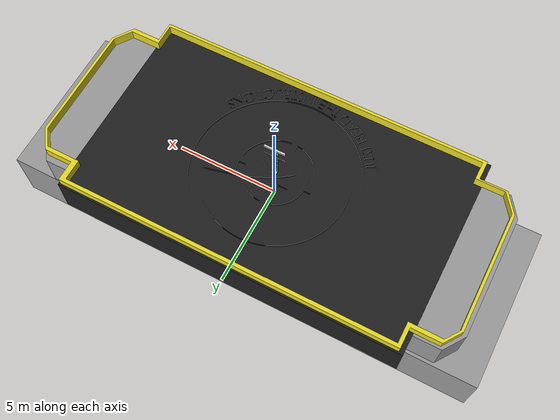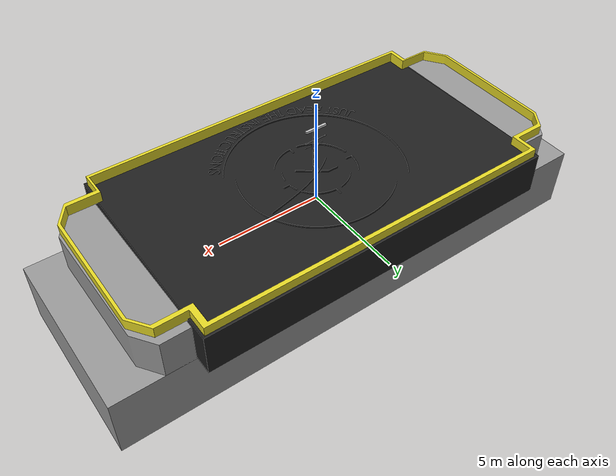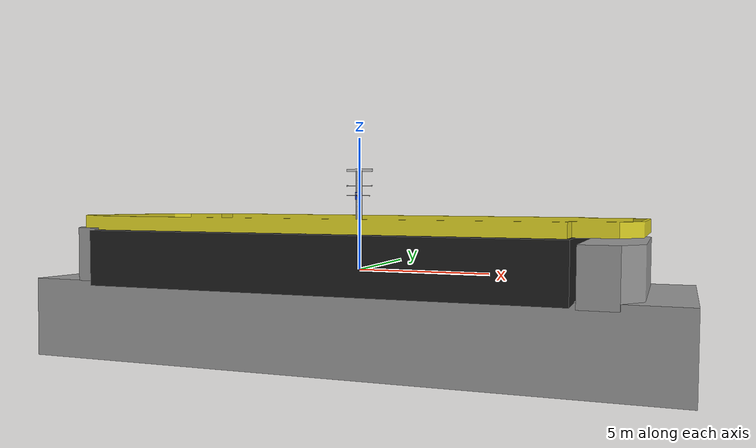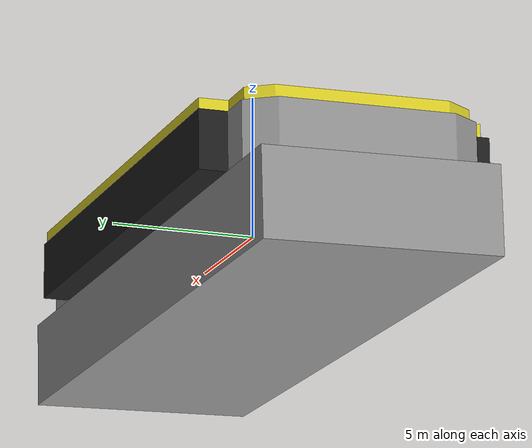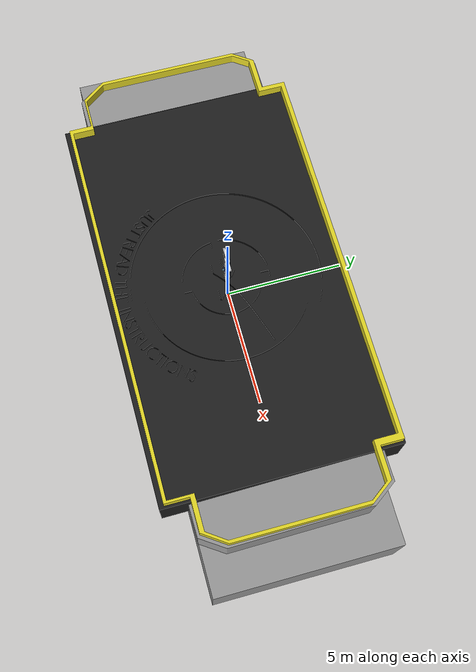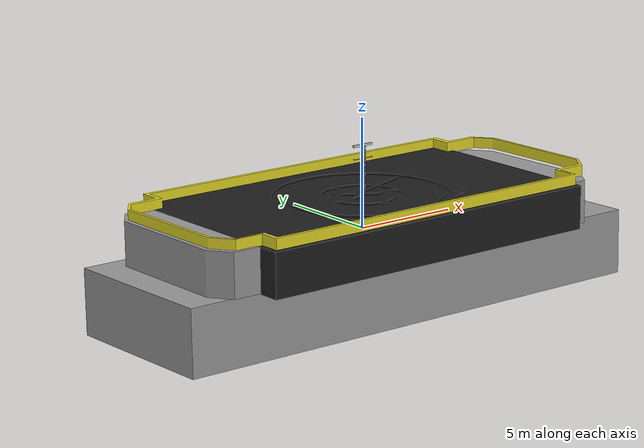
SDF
<?xml version='1.0'?>
<sdf version='1.6'>
  <model name='droneship2'>
    <link name='link_0'>
      <inertial>
        <mass>10000</mass>
        <inertia>
          <ixx>10000</ixx>
          <ixy>0</ixy>
          <ixz>0</ixz>
          <iyy>10000</iyy>
          <iyz>0</iyz>
          <izz>10000</izz>
        </inertia>
      </inertial>
      <pose frame=''>0.055548 0.074743 -0.469586 -1.59323 0 0</pose>
      <self_collide>0</self_collide>
      <enable_wind>0</enable_wind>
      <kinematic>0</kinematic>
      <visual name='visual'>
        <pose frame=''>0 0 0 0 -0 0</pose>
        <geometry>
          <mesh>
            <uri>/home/amit/catkin_ws/src/hunter_killer_mast/meshes/droneship/Drone Ship Base.stl</uri>
            <scale>1 1 1</scale>
          </mesh>
        </geometry>
        <material>
          <lighting>1</lighting>
          <script>
            <uri>file://media/materials/scripts/gazebo.material</uri>
            <name>Gazebo/Grey</name>
          </script>
        </material>
        <transparency>0</transparency>
        <cast_shadows>0</cast_shadows>
      </visual>
      <collision name='collision'>
        <laser_retro>0</laser_retro>
        <max_contacts>10</max_contacts>
        <pose frame=''>0 0 0 0 -0 0</pose>
        <geometry>
          <mesh>
            <uri>/home/amit/catkin_ws/src/hunter_killer_mast/meshes/droneship/Drone Ship Base.stl</uri>
            <scale>1 1 1</scale>
          </mesh>
        </geometry>
        <surface>
          <friction>
            <ode>
              <mu>1</mu>
              <mu2>1</mu2>
              <fdir1>0 0 0</fdir1>
              <slip1>0</slip1>
              <slip2>0</slip2>
            </ode>
            <torsional>
              <coefficient>1</coefficient>
              <patch_radius>0</patch_radius>
              <surface_radius>0</surface_radius>
              <use_patch_radius>1</use_patch_radius>
              <ode>
                <slip>0</slip>
              </ode>
            </torsional>
          </friction>
          <bounce>
            <restitution_coefficient>0</restitution_coefficient>
            <threshold>1e+06</threshold>
          </bounce>
          <contact>
            <collide_without_contact>0</collide_without_contact>
            <collide_without_contact_bitmask>1</collide_without_contact_bitmask>
            <collide_bitmask>1</collide_bitmask>
            <ode>
              <soft_cfm>0</soft_cfm>
              <soft_erp>0.2</soft_erp>
              <kp>1e+13</kp>
              <kd>1</kd>
              <max_vel>0.01</max_vel>
              <min_depth>0</min_depth>
            </ode>
            <bullet>
              <split_impulse>1</split_impulse>
              <split_impulse_penetration_threshold>-0.01</split_impulse_penetration_threshold>
              <soft_cfm>0</soft_cfm>
              <soft_erp>0.2</soft_erp>
              <kp>1e+13</kp>
              <kd>1</kd>
            </bullet>
          </contact>
        </surface>
      </collision>
    </link>
    <link name='base'>
      <pose frame=''>0 0 1.55445 0 -0 0</pose>
      <inertial>
        <pose frame=''>-0.021807 0.298116 0.306153 0 -0 0</pose>
        <mass>26.6735</mass>
        <inertia>
          <ixx>2.29538</ixx>
          <ixy>-9.71572e-19</ixy>
          <ixz>-2.66211e-17</ixz>
          <iyy>4.58898</iyy>
          <iyz>0</iyz>
          <izz>2.29538</izz>
        </inertia>
      </inertial>
      <self_collide>0</self_collide>
      <enable_wind>0</enable_wind>
      <kinematic>0</kinematic>
      <collision name='base_collision'>
        <laser_retro>0</laser_retro>
        <max_contacts>10</max_contacts>
        <pose frame=''>-0.25 0.3 0 0 -0 0</pose>
        <geometry>
          <mesh>
            <uri>/home/amit/catkin_ws/src/hunter_killer_mast/meshes/base.STL</uri>
            <scale>1 1 1</scale>
          </mesh>
        </geometry>
        <surface>
          <friction>
            <ode>
              <mu>1</mu>
              <mu2>1</mu2>
              <fdir1>0 0 0</fdir1>
              <slip1>0</slip1>
              <slip2>0</slip2>
            </ode>
            <torsional>
              <coefficient>1</coefficient>
              <patch_radius>0</patch_radius>
              <surface_radius>0</surface_radius>
              <use_patch_radius>1</use_patch_radius>
              <ode>
                <slip>0</slip>
              </ode>
            </torsional>
          </friction>
          <bounce>
            <restitution_coefficient>0</restitution_coefficient>
            <threshold>1e+06</threshold>
          </bounce>
          <contact>
            <collide_without_contact>0</collide_without_contact>
            <collide_without_contact_bitmask>1</collide_without_contact_bitmask>
            <collide_bitmask>1</collide_bitmask>
            <ode>
              <soft_cfm>0</soft_cfm>
              <soft_erp>0.2</soft_erp>
              <kp>1e+13</kp>
              <kd>1</kd>
              <max_vel>0.01</max_vel>
              <min_depth>0</min_depth>
            </ode>
            <bullet>
              <split_impulse>1</split_impulse>
              <split_impulse_penetration_threshold>-0.01</split_impulse_penetration_threshold>
              <soft_cfm>0</soft_cfm>
              <soft_erp>0.2</soft_erp>
              <kp>1e+13</kp>
              <kd>1</kd>
            </bullet>
          </contact>
        </surface>
      </collision>
    </link>
    <link name='link_1'>
      <inertial>
        <mass>10000</mass>
        <inertia>
          <ixx>10000</ixx>
          <ixy>0</ixy>
          <ixz>0</ixz>
          <iyy>10000</iyy>
          <iyz>0</iyz>
          <izz>10000</izz>
        </inertia>
      </inertial>
      <pose frame=''>-0.038817 -0.079302 -0.447148 1.56287 -0 0</pose>
      <self_collide>0</self_collide>
      <enable_wind>0</enable_wind>
      <kinematic>0</kinematic>
      <visual name='visual'>
        <pose frame=''>0 0 0 0 -0 0</pose>
        <geometry>
          <mesh>
            <uri>/home/amit/catkin_ws/src/hunter_killer_mast/meshes/droneship/Drone Ship part 2.stl</uri>
            <scale>1 1 1</scale>
          </mesh>
        </geometry>
        <material>
          <lighting>1</lighting>
          <script>
            <uri>file://media/materials/scripts/gazebo.material</uri>
            <name>Gazebo/Black</name>
          </script>
        </material>
        <transparency>0</transparency>
        <cast_shadows>0</cast_shadows>
      </visual>
      <collision name='collision'>
        <laser_retro>0</laser_retro>
        <max_contacts>10</max_contacts>
        <pose frame=''>0 0 0 0 -0 0</pose>
        <geometry>
          <mesh>
            <uri>/home/amit/catkin_ws/src/hunter_killer_mast/meshes/droneship/Drone Ship part 2.stl</uri>
            <scale>0.75 0.75 0.75</scale>
          </mesh>
        </geometry>
        <surface>
          <friction>
            <ode>
              <mu>1</mu>
              <mu2>1</mu2>
              <fdir1>0 0 0</fdir1>
              <slip1>0</slip1>
              <slip2>0</slip2>
            </ode>
            <torsional>
              <coefficient>1</coefficient>
              <patch_radius>0</patch_radius>
              <surface_radius>0</surface_radius>
              <use_patch_radius>1</use_patch_radius>
              <ode>
                <slip>0</slip>
              </ode>
            </torsional>
          </friction>
          <bounce>
            <restitution_coefficient>0</restitution_coefficient>
            <threshold>1e+06</threshold>
          </bounce>
          <contact>
            <collide_without_contact>0</collide_without_contact>
            <collide_without_contact_bitmask>1</collide_without_contact_bitmask>
            <collide_bitmask>1</collide_bitmask>
            <ode>
              <soft_cfm>0</soft_cfm>
              <soft_erp>0.2</soft_erp>
              <kp>1e+13</kp>
              <kd>1</kd>
              <max_vel>0.01</max_vel>
              <min_depth>0</min_depth>
            </ode>
            <bullet>
              <split_impulse>1</split_impulse>
              <split_impulse_penetration_threshold>-0.01</split_impulse_penetration_threshold>
              <soft_cfm>0</soft_cfm>
              <soft_erp>0.2</soft_erp>
              <kp>1e+13</kp>
              <kd>1</kd>
            </bullet>
          </contact>
        </surface>
      </collision>
    </link>
    <link name='link_2'>
      <inertial>
        <mass>10000</mass>
        <inertia>
          <ixx>10000</ixx>
          <ixy>0</ixy>
          <ixz>0</ixz>
          <iyy>10000</iyy>
          <iyz>0</iyz>
          <izz>10000</izz>
        </inertia>
      </inertial>
      <pose frame=''>-9.5532 -0.057565 -0.438942 1.55624 -0 0</pose>
      <self_collide>0</self_collide>
      <enable_wind>0</enable_wind>
      <kinematic>0</kinematic>
      <visual name='visual'>
        <pose frame=''>0 0 0 0 -0 0</pose>
        <geometry>
          <mesh>
            <uri>/home/amit/catkin_ws/src/hunter_killer_mast/meshes/droneship/Just Read The Instructions Part 1.stl</uri>
            <scale>1 1 1</scale>
          </mesh>
        </geometry>
        <material>
          <lighting>1</lighting>
          <script>
            <uri>file://media/materials/scripts/gazebo.material</uri>
            <name>Gazebo/Grey</name>
          </script>
        </material>
        <transparency>0</transparency>
        <cast_shadows>0</cast_shadows>
      </visual>
      <collision name='collision'>
        <laser_retro>0</laser_retro>
        <max_contacts>10</max_contacts>
        <pose frame=''>0 0 0 0 -0 0</pose>
        <geometry>
          <mesh>
            <uri>/home/amit/catkin_ws/src/hunter_killer_mast/meshes/droneship/Just Read The Instructions Part 1.stl</uri>
            <scale>1 1 1</scale>
          </mesh>
        </geometry>
        <surface>
          <friction>
            <ode>
              <mu>1</mu>
              <mu2>1</mu2>
              <fdir1>0 0 0</fdir1>
              <slip1>0</slip1>
              <slip2>0</slip2>
            </ode>
            <torsional>
              <coefficient>1</coefficient>
              <patch_radius>0</patch_radius>
              <surface_radius>0</surface_radius>
              <use_patch_radius>1</use_patch_radius>
              <ode>
                <slip>0</slip>
              </ode>
            </torsional>
          </friction>
          <bounce>
            <restitution_coefficient>0</restitution_coefficient>
            <threshold>1e+06</threshold>
          </bounce>
          <contact>
            <collide_without_contact>0</collide_without_contact>
            <collide_without_contact_bitmask>1</collide_without_contact_bitmask>
            <collide_bitmask>1</collide_bitmask>
            <ode>
              <soft_cfm>0</soft_cfm>
              <soft_erp>0.2</soft_erp>
              <kp>1e+13</kp>
              <kd>1</kd>
              <max_vel>0.01</max_vel>
              <min_depth>0</min_depth>
            </ode>
            <bullet>
              <split_impulse>1</split_impulse>
              <split_impulse_penetration_threshold>-0.01</split_impulse_penetration_threshold>
              <soft_cfm>0</soft_cfm>
              <soft_erp>0.2</soft_erp>
              <kp>1e+13</kp>
              <kd>1</kd>
            </bullet>
          </contact>
        </surface>
      </collision>
    </link>
    <link name='link_3'>
      <inertial>
        <mass>10000</mass>
        <inertia>
          <ixx>10000</ixx>
          <ixy>0</ixy>
          <ixz>0</ixz>
          <iyy>10000</iyy>
          <iyz>0</iyz>
          <izz>10000</izz>
        </inertia>
      </inertial>
      <pose frame=''>0.051094 0.007434 2.02223 -1.5872 0 0</pose>
      <self_collide>0</self_collide>
      <enable_wind>0</enable_wind>
      <kinematic>0</kinematic>
      <visual name='visual'>
        <pose frame=''>0 0 0 0 -0 0</pose>
        <geometry>
          <mesh>
            <uri>/home/amit/catkin_ws/src/hunter_killer_mast/meshes/droneship/Railing.stl</uri>
            <scale>1 1 1</scale>
          </mesh>
        </geometry>
        <material>
          <lighting>1</lighting>
          <script>
            <uri>file://media/materials/scripts/gazebo.material</uri>
            <name>Gazebo/Yellow</name>
          </script>
        </material>
        <transparency>0</transparency>
        <cast_shadows>0</cast_shadows>
      </visual>
      <collision name='collision'>
        <laser_retro>0</laser_retro>
        <max_contacts>10</max_contacts>
        <pose frame=''>0 0 0 0 -0 0</pose>
        <geometry>
          <mesh>
            <uri>/home/amit/catkin_ws/src/hunter_killer_mast/meshes/droneship/Railing.stl</uri>
            <scale>1 1 1</scale>
          </mesh>
        </geometry>
        <surface>
          <friction>
            <ode>
              <mu>1</mu>
              <mu2>1</mu2>
              <fdir1>0 0 0</fdir1>
              <slip1>0</slip1>
              <slip2>0</slip2>
            </ode>
            <torsional>
              <coefficient>1</coefficient>
              <patch_radius>0</patch_radius>
              <surface_radius>0</surface_radius>
              <use_patch_radius>1</use_patch_radius>
              <ode>
                <slip>0</slip>
              </ode>
            </torsional>
          </friction>
          <bounce>
            <restitution_coefficient>0</restitution_coefficient>
            <threshold>1e+06</threshold>
          </bounce>
          <contact>
            <collide_without_contact>0</collide_without_contact>
            <collide_without_contact_bitmask>1</collide_without_contact_bitmask>
            <collide_bitmask>1</collide_bitmask>
            <ode>
              <soft_cfm>0</soft_cfm>
              <soft_erp>0.2</soft_erp>
              <kp>1e+13</kp>
              <kd>1</kd>
              <max_vel>0.01</max_vel>
              <min_depth>0</min_depth>
            </ode>
            <bullet>
              <split_impulse>1</split_impulse>
              <split_impulse_penetration_threshold>-0.01</split_impulse_penetration_threshold>
              <soft_cfm>0</soft_cfm>
              <soft_erp>0.2</soft_erp>
              <kp>1e+13</kp>
              <kd>1</kd>
            </bullet>
          </contact>
        </surface>
      </collision>
    </link>
    <link name='link_4'>
      <inertial>
        <mass>10000</mass>
        <inertia>
          <ixx>10000</ixx>
          <ixy>0</ixy>
          <ixz>0</ixz>
          <iyy>10000</iyy>
          <iyz>0</iyz>
          <izz>10000</izz>
        </inertia>
      </inertial>
      <pose frame=''>9.48535 0.054699 -0.666566 1.58388 0.000281 -3.1322</pose>
      <self_collide>0</self_collide>
      <enable_wind>0</enable_wind>
      <kinematic>0</kinematic>
      <visual name='visual'>
        <pose frame=''>0 0 0 0 -0 0</pose>
        <geometry>
          <mesh>
            <uri>/home/amit/catkin_ws/src/hunter_killer_mast/meshes/droneship/Just Read The Instructions Part 1.stl</uri>
            <scale>1 1 1</scale>
          </mesh>
        </geometry>
        <material>
          <lighting>1</lighting>
          <script>
            <uri>file://media/materials/scripts/gazebo.material</uri>
            <name>Gazebo/Grey</name>
          </script>
        </material>
        <transparency>0</transparency>
        <cast_shadows>0</cast_shadows>
      </visual>
      <collision name='collision'>
        <laser_retro>0</laser_retro>
        <max_contacts>10</max_contacts>
        <pose frame=''>0 0 0 0 -0 0</pose>
        <geometry>
          <mesh>
            <uri>/home/amit/catkin_ws/src/hunter_killer_mast/meshes/droneship/Just Read The Instructions Part 1.stl</uri>
            <scale>1 1 1</scale>
          </mesh>
        </geometry>
        <surface>
          <friction>
            <ode>
              <mu>1</mu>
              <mu2>1</mu2>
              <fdir1>0 0 0</fdir1>
              <slip1>0</slip1>
              <slip2>0</slip2>
            </ode>
            <torsional>
              <coefficient>1</coefficient>
              <patch_radius>0</patch_radius>
              <surface_radius>0</surface_radius>
              <use_patch_radius>1</use_patch_radius>
              <ode>
                <slip>0</slip>
              </ode>
            </torsional>
          </friction>
          <bounce>
            <restitution_coefficient>0</restitution_coefficient>
            <threshold>1e+06</threshold>
          </bounce>
          <contact>
            <collide_without_contact>0</collide_without_contact>
            <collide_without_contact_bitmask>1</collide_without_contact_bitmask>
            <collide_bitmask>1</collide_bitmask>
            <ode>
              <soft_cfm>0</soft_cfm>
              <soft_erp>0.2</soft_erp>
              <kp>1e+13</kp>
              <kd>1</kd>
              <max_vel>0.01</max_vel>
              <min_depth>0</min_depth>
            </ode>
            <bullet>
              <split_impulse>1</split_impulse>
              <split_impulse_penetration_threshold>-0.01</split_impulse_penetration_threshold>
              <soft_cfm>0</soft_cfm>
              <soft_erp>0.2</soft_erp>
              <kp>1e+13</kp>
              <kd>1</kd>
            </bullet>
          </contact>
        </surface>
      </collision>
    </link>
    <link name='mast'>
      <pose frame=''>0 0 1.76468 0 -0 0</pose>
      <inertial>
        <pose frame=''>-0.001482 -0.028214 0.755526 -3.14159 -1.0464 -1.0472</pose>
        <mass>4.50868</mass>
        <inertia>
          <ixx>0.278217</ixx>
          <ixy>-0.0121037</ixy>
          <ixz>0.369556</ixz>
          <iyy>0.959113</iyy>
          <iyz>0.0251943</iyz>
          <izz>0.786576</izz>
        </inertia>
      </inertial>
      <self_collide>0</self_collide>
      <enable_wind>0</enable_wind>
      <kinematic>0</kinematic>
      <visual name='mast_fixed_joint_lump__ledport_visual_9'>
        <pose frame=''>0.48 -0.046 1.48 0 -0 0</pose>
        <geometry>
          <mesh>
            <scale>1 1 1</scale>
            <uri>/home/amit/catkin_ws/src/hunter_killer_mast/meshes/base_led.STL</uri>
          </mesh>
        </geometry>
        <material>
          <shader type='vertex'>
            <normal_map>__default__</normal_map>
          </shader>
          <script>
            <name>ModelPreview_1::base::base_fixed_joint_lump__navigation_pole_visual_9_MATERIAL_</name>
            <uri>__default__</uri>
          </script>
          <ambient>0.4 0.4 0.4 1</ambient>
          <diffuse>0.8 0.8 0.8 1</diffuse>
          <specular>0.4 0.4 0.4 1</specular>
          <emissive>0 0 0 1</emissive>
        </material>
        <transparency>0</transparency>
        <cast_shadows>0</cast_shadows>
      </visual>
      <visual name='mast_visual'>
        <pose frame=''>0 0.05 0.714 -3.14159 -1.0464 -1.0472</pose>
        <geometry>
          <mesh>
            <scale>1 1 1</scale>
            <uri>/home/amit/catkin_ws/src/hunter_killer_mast/meshes/mast.STL</uri>
          </mesh>
        </geometry>
        <material>
          <shader type='vertex'>
            <normal_map>__default__</normal_map>
          </shader>
          <script>
            <name>ModelPreview_1::base::base_fixed_joint_lump__mast_visual_1_MATERIAL_</name>
            <uri>__default__</uri>
          </script>
          <ambient>0.4 0.4 0.4 1</ambient>
          <diffuse>0.8 0.8 0.8 1</diffuse>
          <specular>0.4 0.4 0.4 1</specular>
          <emissive>0 0 0 1</emissive>
        </material>
        <transparency>0</transparency>
        <cast_shadows>0</cast_shadows>
      </visual>
      <visual name='mast_fixed_joint_lump__blue_board_visual_1'>
        <pose frame=''>-0.01 -0.13 1.05 1.5708 -0 0</pose>
        <geometry>
          <mesh>
            <scale>1 1 1</scale>
            <uri>/home/amit/catkin_ws/src/hunter_killer_mast/meshes/blue_board.STL</uri>
          </mesh>
        </geometry>
        <material>
          <shader type='vertex'>
            <normal_map>__default__</normal_map>
          </shader>
          <script>
            <name>ModelPreview_1::base::base_fixed_joint_lump__blue_board_visual_2_MATERIAL_</name>
            <uri>__default__</uri>
          </script>
          <ambient>0.225 0.3 0.35 1</ambient>
          <diffuse>0.45 0.6 0.7 1</diffuse>
          <specular>0.2 0.2 0.2 1</specular>
          <emissive>0 0 0 1</emissive>
        </material>
        <transparency>0</transparency>
        <cast_shadows>0</cast_shadows>
      </visual>
      <visual name='mast_fixed_joint_lump__name_plate_visual_2'>
        <pose frame=''>-0.01 -0.132794 1.13382 -4e-06 0 0</pose>
        <geometry>
          <box>
            <size>0.26 0.001 0.062</size>
          </box>
        </geometry>
        <material>
          <script>
            <uri>/home/amit/catkin_ws/src/hunter_killer_mast/materials/byu.material</uri>
            <name>BYU/ground</name>
          </script>
        </material>
        <transparency>0</transparency>
        <cast_shadows>0</cast_shadows>
      </visual>
      <visual name='mast_fixed_joint_lump__rod_supporter_visual_3'>
        <pose frame=''>-0.01 -0.13 1.05 1.5708 -0 0</pose>
        <geometry>
          <mesh>
            <scale>1 1 1</scale>
            <uri>/home/amit/catkin_ws/src/hunter_killer_mast/meshes/rod_supporter.STL</uri>
          </mesh>
        </geometry>
        <material>
          <shader type='vertex'>
            <normal_map>__default__</normal_map>
          </shader>
          <script>
            <name>ModelPreview_1::base::base_fixed_joint_lump__rod_supporter_visual_4_MATERIAL_</name>
            <uri>__default__</uri>
          </script>
          <ambient>0.225 0.3 0.35 1</ambient>
          <diffuse>0.45 0.6 0.7 1</diffuse>
          <specular>0.2 0.2 0.2 1</specular>
          <emissive>0 0 0 1</emissive>
        </material>
        <transparency>0</transparency>
        <cast_shadows>0</cast_shadows>
      </visual>
      <visual name='mast_fixed_joint_lump__communication_module_visual_4'>
        <pose frame=''>0.0027 -0.18254 1.05 0.053011 3e-06 -1.5708</pose>
        <geometry>
          <mesh>
            <scale>1 1 1</scale>
            <uri>/home/amit/catkin_ws/src/hunter_killer_mast/meshes/communication_module.STL</uri>
          </mesh>
        </geometry>
        <material>
          <shader type='vertex'>
            <normal_map>__default__</normal_map>
          </shader>
          <script>
            <name>ModelPreview_1::base::base_fixed_joint_lump__communication_module_visual_5_MATERIAL_</name>
            <uri>__default__</uri>
          </script>
          <ambient>0.225 0.3 0.35 1</ambient>
          <diffuse>0.45 0.6 0.7 1</diffuse>
          <specular>0.2 0.2 0.2 1</specular>
          <emissive>0 0 0 1</emissive>
        </material>
        <transparency>0</transparency>
        <cast_shadows>0</cast_shadows>
      </visual>
      <visual name='mast_fixed_joint_lump__antena_visual_5'>
        <pose frame=''>0.434503 -0.19858 1.05252 3.14151 3e-06 -1.5708</pose>
        <geometry>
          <mesh>
            <scale>1 1 1</scale>
            <uri>/home/amit/catkin_ws/src/hunter_killer_mast/meshes/antena.STL</uri>
          </mesh>
        </geometry>
        <material>
          <shader type='vertex'>
            <normal_map>__default__</normal_map>
          </shader>
          <script>
            <name>ModelPreview_1::base::base_fixed_joint_lump__antena_visual_6_MATERIAL_</name>
            <uri>__default__</uri>
          </script>
          <ambient>0.4 0.4 0.4 1</ambient>
          <diffuse>0.8 0.8 0.8 1</diffuse>
          <specular>0.4 0.4 0.4 1</specular>
          <emissive>0 0 0 1</emissive>
        </material>
        <transparency>0</transparency>
        <cast_shadows>0</cast_shadows>
      </visual>
      <visual name='mast_fixed_joint_lump__exposed_plate_visual_6'>
        <pose frame=''>-0.01 -0.23414 1.05 3.14159 1.57079 -3e-06</pose>
        <geometry>
          <mesh>
            <scale>1 1 1</scale>
            <uri>/home/amit/catkin_ws/src/hunter_killer_mast/meshes/exposed_plate.STL</uri>
          </mesh>
        </geometry>
        <material>
          <script>
            <name>Gazebo/Red</name>
            <uri>file://media/materials/scripts/gazebo.material</uri>
          </script>
        </material>
        <transparency>0</transparency>
        <cast_shadows>0</cast_shadows>
      </visual>
      <visual name='mast_fixed_joint_lump__guide_rods_visual_7'>
        <pose frame=''>-0.01 -0.13 1.05 1.5708 -0 0</pose>
        <geometry>
          <mesh>
            <scale>1 1 1</scale>
            <uri>/home/amit/catkin_ws/src/hunter_killer_mast/meshes/guide_rods.STL</uri>
          </mesh>
        </geometry>
        <material>
          <shader type='vertex'>
            <normal_map>__default__</normal_map>
          </shader>
          <script>
            <name>ModelPreview_1::base::base_fixed_joint_lump__guide_rods_visual_8_MATERIAL_</name>
            <uri>__default__</uri>
          </script>
          <ambient>0.225 0.3 0.35 1</ambient>
          <diffuse>0.45 0.6 0.7 1</diffuse>
          <specular>0.2 0.2 0.2 1</specular>
          <emissive>0 0 0 1</emissive>
        </material>
        <transparency>0</transparency>
        <cast_shadows>0</cast_shadows>
      </visual>
      <visual name='mast_fixed_joint_lump__navigation_pole_visual_8'>
        <pose frame=''>-0.508 -0.05 1.43 3.14159 1.57079 3.14159</pose>
        <geometry>
          <mesh>
            <scale>1 1 1</scale>
            <uri>/home/amit/catkin_ws/src/hunter_killer_mast/meshes/navigation_pole.STL</uri>
          </mesh>
        </geometry>
        <material>
          <shader type='vertex'>
            <normal_map>__default__</normal_map>
          </shader>
          <script>
            <name>ModelPreview_1::base::base_fixed_joint_lump__navigation_pole_visual_9_MATERIAL_</name>
            <uri>__default__</uri>
          </script>
          <ambient>0.4 0.4 0.4 1</ambient>
          <diffuse>0.8 0.8 0.8 1</diffuse>
          <specular>0.4 0.4 0.4 1</specular>
          <emissive>0 0 0 1</emissive>
        </material>
        <transparency>0</transparency>
        <cast_shadows>0</cast_shadows>
      </visual>
      <visual name='mast_fixed_joint_lump__ledstarboard_visual_10'>
        <pose frame=''>-0.52 -0.046 1.48 0 -0 0</pose>
        <geometry>
          <mesh>
            <scale>1 1 1</scale>
            <uri>/home/amit/catkin_ws/src/hunter_killer_mast/meshes/base_led.STL</uri>
          </mesh>
        </geometry>
        <material>
          <shader type='vertex'>
            <normal_map>__default__</normal_map>
          </shader>
          <script>
            <name>ModelPreview_1::base::base_fixed_joint_lump__navigation_pole_visual_9_MATERIAL_</name>
            <uri>__default__</uri>
          </script>
          <ambient>0.4 0.4 0.4 1</ambient>
          <diffuse>0.8 0.8 0.8 1</diffuse>
          <specular>0.4 0.4 0.4 1</specular>
          <emissive>0 0 0 1</emissive>
        </material>
        <transparency>0</transparency>
        <cast_shadows>0</cast_shadows>
      </visual>
      <collision name='mast_collision'>
        <laser_retro>0</laser_retro>
        <max_contacts>10</max_contacts>
        <pose frame=''>0 0.05 0.714 -3.14159 -1.0464 -1.0472</pose>
        <geometry>
          <mesh>
            <uri>/home/amit/catkin_ws/src/hunter_killer_mast/meshes/mast.STL</uri>
            <scale>1 1 1</scale>
          </mesh>
        </geometry>
        <surface>
          <friction>
            <ode>
              <mu>1</mu>
              <mu2>1</mu2>
              <fdir1>0 0 0</fdir1>
              <slip1>0</slip1>
              <slip2>0</slip2>
            </ode>
            <torsional>
              <coefficient>1</coefficient>
              <patch_radius>0</patch_radius>
              <surface_radius>0</surface_radius>
              <use_patch_radius>1</use_patch_radius>
              <ode>
                <slip>0</slip>
              </ode>
            </torsional>
          </friction>
          <bounce>
            <restitution_coefficient>0</restitution_coefficient>
            <threshold>1e+06</threshold>
          </bounce>
          <contact>
            <collide_without_contact>0</collide_without_contact>
            <collide_without_contact_bitmask>1</collide_without_contact_bitmask>
            <collide_bitmask>1</collide_bitmask>
            <ode>
              <soft_cfm>0</soft_cfm>
              <soft_erp>0.2</soft_erp>
              <kp>1e+13</kp>
              <kd>1</kd>
              <max_vel>0.01</max_vel>
              <min_depth>0</min_depth>
            </ode>
            <bullet>
              <split_impulse>1</split_impulse>
              <split_impulse_penetration_threshold>-0.01</split_impulse_penetration_threshold>
              <soft_cfm>0</soft_cfm>
              <soft_erp>0.2</soft_erp>
              <kp>1e+13</kp>
              <kd>1</kd>
            </bullet>
          </contact>
        </surface>
      </collision>
      <collision name='mast_fixed_joint_lump__blue_board_collision_1'>
        <laser_retro>0</laser_retro>
        <max_contacts>10</max_contacts>
        <pose frame=''>-0.01 -0.13 1.05 1.5708 -0 0</pose>
        <geometry>
          <mesh>
            <uri>/home/amit/catkin_ws/src/hunter_killer_mast/meshes/blue_board.STL</uri>
            <scale>1 1 1</scale>
          </mesh>
        </geometry>
        <surface>
          <friction>
            <ode>
              <mu>1</mu>
              <mu2>1</mu2>
              <fdir1>0 0 0</fdir1>
              <slip1>0</slip1>
              <slip2>0</slip2>
            </ode>
            <torsional>
              <coefficient>1</coefficient>
              <patch_radius>0</patch_radius>
              <surface_radius>0</surface_radius>
              <use_patch_radius>1</use_patch_radius>
              <ode>
                <slip>0</slip>
              </ode>
            </torsional>
          </friction>
          <bounce>
            <restitution_coefficient>0</restitution_coefficient>
            <threshold>1e+06</threshold>
          </bounce>
          <contact>
            <collide_without_contact>0</collide_without_contact>
            <collide_without_contact_bitmask>1</collide_without_contact_bitmask>
            <collide_bitmask>1</collide_bitmask>
            <ode>
              <soft_cfm>0</soft_cfm>
              <soft_erp>0.2</soft_erp>
              <kp>1e+13</kp>
              <kd>1</kd>
              <max_vel>0.01</max_vel>
              <min_depth>0</min_depth>
            </ode>
            <bullet>
              <split_impulse>1</split_impulse>
              <split_impulse_penetration_threshold>-0.01</split_impulse_penetration_threshold>
              <soft_cfm>0</soft_cfm>
              <soft_erp>0.2</soft_erp>
              <kp>1e+13</kp>
              <kd>1</kd>
            </bullet>
          </contact>
        </surface>
      </collision>
      <collision name='mast_fixed_joint_lump__name_plate_collision_2'>
        <laser_retro>0</laser_retro>
        <max_contacts>10</max_contacts>
        <pose frame=''>-0.01 -0.132794 1.13382 -4e-06 0 0</pose>
        <geometry>
          <mesh>
            <uri>/home/amit/catkin_ws/src/hunter_killer_mast/meshes/name_plate.STL</uri>
            <scale>1 1 1</scale>
          </mesh>
        </geometry>
        <surface>
          <friction>
            <ode>
              <mu>1</mu>
              <mu2>1</mu2>
              <fdir1>0 0 0</fdir1>
              <slip1>0</slip1>
              <slip2>0</slip2>
            </ode>
            <torsional>
              <coefficient>1</coefficient>
              <patch_radius>0</patch_radius>
              <surface_radius>0</surface_radius>
              <use_patch_radius>1</use_patch_radius>
              <ode>
                <slip>0</slip>
              </ode>
            </torsional>
          </friction>
          <bounce>
            <restitution_coefficient>0</restitution_coefficient>
            <threshold>1e+06</threshold>
          </bounce>
          <contact>
            <collide_without_contact>0</collide_without_contact>
            <collide_without_contact_bitmask>1</collide_without_contact_bitmask>
            <collide_bitmask>1</collide_bitmask>
            <ode>
              <soft_cfm>0</soft_cfm>
              <soft_erp>0.2</soft_erp>
              <kp>1e+13</kp>
              <kd>1</kd>
              <max_vel>0.01</max_vel>
              <min_depth>0</min_depth>
            </ode>
            <bullet>
              <split_impulse>1</split_impulse>
              <split_impulse_penetration_threshold>-0.01</split_impulse_penetration_threshold>
              <soft_cfm>0</soft_cfm>
              <soft_erp>0.2</soft_erp>
              <kp>1e+13</kp>
              <kd>1</kd>
            </bullet>
          </contact>
        </surface>
      </collision>
      <collision name='mast_fixed_joint_lump__rod_supporter_collision_3'>
        <laser_retro>0</laser_retro>
        <max_contacts>10</max_contacts>
        <pose frame=''>-0.01 -0.13 1.05 1.5708 -0 0</pose>
        <geometry>
          <mesh>
            <uri>/home/amit/catkin_ws/src/hunter_killer_mast/meshes/rod_supporter.STL</uri>
            <scale>1 1 1</scale>
          </mesh>
        </geometry>
        <surface>
          <friction>
            <ode>
              <mu>1</mu>
              <mu2>1</mu2>
              <fdir1>0 0 0</fdir1>
              <slip1>0</slip1>
              <slip2>0</slip2>
            </ode>
            <torsional>
              <coefficient>1</coefficient>
              <patch_radius>0</patch_radius>
              <surface_radius>0</surface_radius>
              <use_patch_radius>1</use_patch_radius>
              <ode>
                <slip>0</slip>
              </ode>
            </torsional>
          </friction>
          <bounce>
            <restitution_coefficient>0</restitution_coefficient>
            <threshold>1e+06</threshold>
          </bounce>
          <contact>
            <collide_without_contact>0</collide_without_contact>
            <collide_without_contact_bitmask>1</collide_without_contact_bitmask>
            <collide_bitmask>1</collide_bitmask>
            <ode>
              <soft_cfm>0</soft_cfm>
              <soft_erp>0.2</soft_erp>
              <kp>1e+13</kp>
              <kd>1</kd>
              <max_vel>0.01</max_vel>
              <min_depth>0</min_depth>
            </ode>
            <bullet>
              <split_impulse>1</split_impulse>
              <split_impulse_penetration_threshold>-0.01</split_impulse_penetration_threshold>
              <soft_cfm>0</soft_cfm>
              <soft_erp>0.2</soft_erp>
              <kp>1e+13</kp>
              <kd>1</kd>
            </bullet>
          </contact>
        </surface>
      </collision>
      <collision name='mast_fixed_joint_lump__communication_module_collision_4'>
        <laser_retro>0</laser_retro>
        <max_contacts>10</max_contacts>
        <pose frame=''>0.0027 -0.18254 1.05 0.053011 3e-06 -1.5708</pose>
        <geometry>
          <mesh>
            <uri>/home/amit/catkin_ws/src/hunter_killer_mast/meshes/communication_module.STL</uri>
            <scale>1 1 1</scale>
          </mesh>
        </geometry>
        <surface>
          <friction>
            <ode>
              <mu>1</mu>
              <mu2>1</mu2>
              <fdir1>0 0 0</fdir1>
              <slip1>0</slip1>
              <slip2>0</slip2>
            </ode>
            <torsional>
              <coefficient>1</coefficient>
              <patch_radius>0</patch_radius>
              <surface_radius>0</surface_radius>
              <use_patch_radius>1</use_patch_radius>
              <ode>
                <slip>0</slip>
              </ode>
            </torsional>
          </friction>
          <bounce>
            <restitution_coefficient>0</restitution_coefficient>
            <threshold>1e+06</threshold>
          </bounce>
          <contact>
            <collide_without_contact>0</collide_without_contact>
            <collide_without_contact_bitmask>1</collide_without_contact_bitmask>
            <collide_bitmask>1</collide_bitmask>
            <ode>
              <soft_cfm>0</soft_cfm>
              <soft_erp>0.2</soft_erp>
              <kp>1e+13</kp>
              <kd>1</kd>
              <max_vel>0.01</max_vel>
              <min_depth>0</min_depth>
            </ode>
            <bullet>
              <split_impulse>1</split_impulse>
              <split_impulse_penetration_threshold>-0.01</split_impulse_penetration_threshold>
              <soft_cfm>0</soft_cfm>
              <soft_erp>0.2</soft_erp>
              <kp>1e+13</kp>
              <kd>1</kd>
            </bullet>
          </contact>
        </surface>
      </collision>
      <collision name='mast_fixed_joint_lump__antena_collision_5'>
        <laser_retro>0</laser_retro>
        <max_contacts>10</max_contacts>
        <pose frame=''>0.434503 -0.19858 1.05252 3.14151 3e-06 -1.5708</pose>
        <geometry>
          <mesh>
            <uri>/home/amit/catkin_ws/src/hunter_killer_mast/meshes/antena.STL</uri>
            <scale>1 1 1</scale>
          </mesh>
        </geometry>
        <surface>
          <friction>
            <ode>
              <mu>1</mu>
              <mu2>1</mu2>
              <fdir1>0 0 0</fdir1>
              <slip1>0</slip1>
              <slip2>0</slip2>
            </ode>
            <torsional>
              <coefficient>1</coefficient>
              <patch_radius>0</patch_radius>
              <surface_radius>0</surface_radius>
              <use_patch_radius>1</use_patch_radius>
              <ode>
                <slip>0</slip>
              </ode>
            </torsional>
          </friction>
          <bounce>
            <restitution_coefficient>0</restitution_coefficient>
            <threshold>1e+06</threshold>
          </bounce>
          <contact>
            <collide_without_contact>0</collide_without_contact>
            <collide_without_contact_bitmask>1</collide_without_contact_bitmask>
            <collide_bitmask>1</collide_bitmask>
            <ode>
              <soft_cfm>0</soft_cfm>
              <soft_erp>0.2</soft_erp>
              <kp>1e+13</kp>
              <kd>1</kd>
              <max_vel>0.01</max_vel>
              <min_depth>0</min_depth>
            </ode>
            <bullet>
              <split_impulse>1</split_impulse>
              <split_impulse_penetration_threshold>-0.01</split_impulse_penetration_threshold>
              <soft_cfm>0</soft_cfm>
              <soft_erp>0.2</soft_erp>
              <kp>1e+13</kp>
              <kd>1</kd>
            </bullet>
          </contact>
        </surface>
      </collision>
      <collision name='mast_fixed_joint_lump__guide_rods_collision_7'>
        <laser_retro>0</laser_retro>
        <max_contacts>10</max_contacts>
        <pose frame=''>-0.01 -0.13 1.05 1.5708 -0 0</pose>
        <geometry>
          <mesh>
            <uri>/home/amit/catkin_ws/src/hunter_killer_mast/meshes/guide_rods.STL</uri>
            <scale>1 1 1</scale>
          </mesh>
        </geometry>
        <surface>
          <friction>
            <ode>
              <mu>1</mu>
              <mu2>1</mu2>
              <fdir1>0 0 0</fdir1>
              <slip1>0</slip1>
              <slip2>0</slip2>
            </ode>
            <torsional>
              <coefficient>1</coefficient>
              <patch_radius>0</patch_radius>
              <surface_radius>0</surface_radius>
              <use_patch_radius>1</use_patch_radius>
              <ode>
                <slip>0</slip>
              </ode>
            </torsional>
          </friction>
          <bounce>
            <restitution_coefficient>0</restitution_coefficient>
            <threshold>1e+06</threshold>
          </bounce>
          <contact>
            <collide_without_contact>0</collide_without_contact>
            <collide_without_contact_bitmask>1</collide_without_contact_bitmask>
            <collide_bitmask>1</collide_bitmask>
            <ode>
              <soft_cfm>0</soft_cfm>
              <soft_erp>0.2</soft_erp>
              <kp>1e+13</kp>
              <kd>1</kd>
              <max_vel>0.01</max_vel>
              <min_depth>0</min_depth>
            </ode>
            <bullet>
              <split_impulse>1</split_impulse>
              <split_impulse_penetration_threshold>-0.01</split_impulse_penetration_threshold>
              <soft_cfm>0</soft_cfm>
              <soft_erp>0.2</soft_erp>
              <kp>1e+13</kp>
              <kd>1</kd>
            </bullet>
          </contact>
        </surface>
      </collision>
      <collision name='mast_fixed_joint_lump__exposed_plate_collision_6'>
        <laser_retro>0</laser_retro>
        <max_contacts>10</max_contacts>
        <pose frame=''>-0.01 -0.23414 1.05 3.14159 1.57079 -3e-06</pose>
        <geometry>
          <mesh>
            <uri>/home/amit/catkin_ws/src/hunter_killer_mast/meshes/exposed_plate.STL</uri>
            <scale>1 1 1</scale>
          </mesh>
        </geometry>
        <surface>
          <friction>
            <ode>
              <mu>1</mu>
              <mu2>1</mu2>
              <fdir1>0 0 0</fdir1>
              <slip1>0</slip1>
              <slip2>0</slip2>
            </ode>
            <torsional>
              <coefficient>1</coefficient>
              <patch_radius>0</patch_radius>
              <surface_radius>0</surface_radius>
              <use_patch_radius>1</use_patch_radius>
              <ode>
                <slip>0</slip>
              </ode>
            </torsional>
          </friction>
          <bounce>
            <restitution_coefficient>0</restitution_coefficient>
            <threshold>1e+06</threshold>
          </bounce>
          <contact>
            <collide_without_contact>0</collide_without_contact>
            <collide_without_contact_bitmask>1</collide_without_contact_bitmask>
            <collide_bitmask>1</collide_bitmask>
            <ode>
              <soft_cfm>0</soft_cfm>
              <soft_erp>0.2</soft_erp>
              <kp>1e+13</kp>
              <kd>1</kd>
              <max_vel>0.01</max_vel>
              <min_depth>0</min_depth>
            </ode>
            <bullet>
              <split_impulse>1</split_impulse>
              <split_impulse_penetration_threshold>-0.01</split_impulse_penetration_threshold>
              <soft_cfm>0</soft_cfm>
              <soft_erp>0.2</soft_erp>
              <kp>1e+13</kp>
              <kd>1</kd>
            </bullet>
          </contact>
        </surface>
      </collision>
      <collision name='mast_fixed_joint_lump__ledport_collision_9'>
        <laser_retro>0</laser_retro>
        <max_contacts>10</max_contacts>
        <pose frame=''>0.48 -0.046 1.48 0 -0 0</pose>
        <geometry>
          <mesh>
            <uri>/home/amit/catkin_ws/src/hunter_killer_mast/meshes/base_led.STL</uri>
            <scale>1 1 1</scale>
          </mesh>
        </geometry>
        <surface>
          <friction>
            <ode>
              <mu>1</mu>
              <mu2>1</mu2>
              <fdir1>0 0 0</fdir1>
              <slip1>0</slip1>
              <slip2>0</slip2>
            </ode>
            <torsional>
              <coefficient>1</coefficient>
              <patch_radius>0</patch_radius>
              <surface_radius>0</surface_radius>
              <use_patch_radius>1</use_patch_radius>
              <ode>
                <slip>0</slip>
              </ode>
            </torsional>
          </friction>
          <bounce>
            <restitution_coefficient>0</restitution_coefficient>
            <threshold>1e+06</threshold>
          </bounce>
          <contact>
            <collide_without_contact>0</collide_without_contact>
            <collide_without_contact_bitmask>1</collide_without_contact_bitmask>
            <collide_bitmask>1</collide_bitmask>
            <ode>
              <soft_cfm>0</soft_cfm>
              <soft_erp>0.2</soft_erp>
              <kp>1e+13</kp>
              <kd>1</kd>
              <max_vel>0.01</max_vel>
              <min_depth>0</min_depth>
            </ode>
            <bullet>
              <split_impulse>1</split_impulse>
              <split_impulse_penetration_threshold>-0.01</split_impulse_penetration_threshold>
              <soft_cfm>0</soft_cfm>
              <soft_erp>0.2</soft_erp>
              <kp>1e+13</kp>
              <kd>1</kd>
            </bullet>
          </contact>
        </surface>
      </collision>
      <collision name='mast_fixed_joint_lump__navigation_pole_collision_8'>
        <laser_retro>0</laser_retro>
        <max_contacts>10</max_contacts>
        <pose frame=''>-0.508 -0.05 1.43 3.14159 1.57079 3.14159</pose>
        <geometry>
          <mesh>
            <uri>/home/amit/catkin_ws/src/hunter_killer_mast/meshes/navigation_pole.STL</uri>
            <scale>1 1 1</scale>
          </mesh>
        </geometry>
        <surface>
          <friction>
            <ode>
              <mu>1</mu>
              <mu2>1</mu2>
              <fdir1>0 0 0</fdir1>
              <slip1>0</slip1>
              <slip2>0</slip2>
            </ode>
            <torsional>
              <coefficient>1</coefficient>
              <patch_radius>0</patch_radius>
              <surface_radius>0</surface_radius>
              <use_patch_radius>1</use_patch_radius>
              <ode>
                <slip>0</slip>
              </ode>
            </torsional>
          </friction>
          <bounce>
            <restitution_coefficient>0</restitution_coefficient>
            <threshold>1e+06</threshold>
          </bounce>
          <contact>
            <collide_without_contact>0</collide_without_contact>
            <collide_without_contact_bitmask>1</collide_without_contact_bitmask>
            <collide_bitmask>1</collide_bitmask>
            <ode>
              <soft_cfm>0</soft_cfm>
              <soft_erp>0.2</soft_erp>
              <kp>1e+13</kp>
              <kd>1</kd>
              <max_vel>0.01</max_vel>
              <min_depth>0</min_depth>
            </ode>
            <bullet>
              <split_impulse>1</split_impulse>
              <split_impulse_penetration_threshold>-0.01</split_impulse_penetration_threshold>
              <soft_cfm>0</soft_cfm>
              <soft_erp>0.2</soft_erp>
              <kp>1e+13</kp>
              <kd>1</kd>
            </bullet>
          </contact>
        </surface>
      </collision>
      <collision name='mast_fixed_joint_lump__ledstarboard_collision_10'>
        <laser_retro>0</laser_retro>
        <max_contacts>10</max_contacts>
        <pose frame=''>-0.52 -0.046 1.48 0 -0 0</pose>
        <geometry>
          <mesh>
            <uri>/home/amit/catkin_ws/src/hunter_killer_mast/meshes/base_led.STL</uri>
            <scale>1 1 1</scale>
          </mesh>
        </geometry>
        <surface>
          <friction>
            <ode>
              <mu>1</mu>
              <mu2>1</mu2>
              <fdir1>0 0 0</fdir1>
              <slip1>0</slip1>
              <slip2>0</slip2>
            </ode>
            <torsional>
              <coefficient>1</coefficient>
              <patch_radius>0</patch_radius>
              <surface_radius>0</surface_radius>
              <use_patch_radius>1</use_patch_radius>
              <ode>
                <slip>0</slip>
              </ode>
            </torsional>
          </friction>
          <bounce>
            <restitution_coefficient>0</restitution_coefficient>
            <threshold>1e+06</threshold>
          </bounce>
          <contact>
            <collide_without_contact>0</collide_without_contact>
            <collide_without_contact_bitmask>1</collide_without_contact_bitmask>
            <collide_bitmask>1</collide_bitmask>
            <ode>
              <soft_cfm>0</soft_cfm>
              <soft_erp>0.2</soft_erp>
              <kp>1e+13</kp>
              <kd>1</kd>
              <max_vel>0.01</max_vel>
              <min_depth>0</min_depth>
            </ode>
            <bullet>
              <split_impulse>1</split_impulse>
              <split_impulse_penetration_threshold>-0.01</split_impulse_penetration_threshold>
              <soft_cfm>0</soft_cfm>
              <soft_erp>0.2</soft_erp>
              <kp>1e+13</kp>
              <kd>1</kd>
            </bullet>
          </contact>
        </surface>
      </collision>
    </link>
    <link name='pankha'>
      <pose frame=''>0 -0.03 3.79441 0 -0 0</pose>
      <inertial>
        <pose frame=''>0 0 -0 0 -0 0</pose>
        <mass>3.73075</mass>
        <inertia>
          <ixx>0.0101974</ixx>
          <ixy>0</ixy>
          <ixz>8.84709e-18</ixz>
          <iyy>0.326023</iyy>
          <iyz>5.60136e-20</iyz>
          <izz>0.326023</izz>
        </inertia>
      </inertial>
      <self_collide>0</self_collide>
      <enable_wind>0</enable_wind>
      <kinematic>0</kinematic>
      <visual name='pankha_visual'>
        <pose frame=''>-0.508 0 0 0 -0 0</pose>
        <geometry>
          <mesh>
            <scale>1 1 1</scale>
            <uri>/home/amit/catkin_ws/src/hunter_killer_mast/meshes/pankha.STL</uri>
          </mesh>
        </geometry>
        <material>
          <shader type='vertex'>
            <normal_map>__default__</normal_map>
          </shader>
          <script>
            <name>ModelPreview_1::base::base_fixed_joint_lump__pankha_visual_10_MATERIAL_</name>
            <uri>__default__</uri>
          </script>
          <ambient>0.4 0.4 0.4 1</ambient>
          <diffuse>0.8 0.8 0.8 1</diffuse>
          <specular>0.4 0.4 0.4 1</specular>
          <emissive>0 0 0 1</emissive>
        </material>
        <transparency>0</transparency>
        <cast_shadows>0</cast_shadows>
      </visual>
      <collision name='pankha_collision'>
        <laser_retro>0</laser_retro>
        <max_contacts>10</max_contacts>
        <pose frame=''>-0.508 0 0 0 -0 0</pose>
        <geometry>
          <mesh>
            <uri>/home/amit/catkin_ws/src/hunter_killer_mast/meshes/pankha.STL</uri>
            <scale>1 1 1</scale>
          </mesh>
        </geometry>
        <surface>
          <friction>
            <ode>
              <mu>1</mu>
              <mu2>1</mu2>
              <fdir1>0 0 0</fdir1>
              <slip1>0</slip1>
              <slip2>0</slip2>
            </ode>
            <torsional>
              <coefficient>1</coefficient>
              <patch_radius>0</patch_radius>
              <surface_radius>0</surface_radius>
              <use_patch_radius>1</use_patch_radius>
              <ode>
                <slip>0</slip>
              </ode>
            </torsional>
          </friction>
          <bounce>
            <restitution_coefficient>0</restitution_coefficient>
            <threshold>1e+06</threshold>
          </bounce>
          <contact>
            <collide_without_contact>0</collide_without_contact>
            <collide_without_contact_bitmask>1</collide_without_contact_bitmask>
            <collide_bitmask>1</collide_bitmask>
            <ode>
              <soft_cfm>0</soft_cfm>
              <soft_erp>0.2</soft_erp>
              <kp>1e+13</kp>
              <kd>1</kd>
              <max_vel>0.01</max_vel>
              <min_depth>0</min_depth>
            </ode>
            <bullet>
              <split_impulse>1</split_impulse>
              <split_impulse_penetration_threshold>-0.01</split_impulse_penetration_threshold>
              <soft_cfm>0</soft_cfm>
              <soft_erp>0.2</soft_erp>
              <kp>1e+13</kp>
              <kd>1</kd>
            </bullet>
          </contact>
        </surface>
      </collision>
    </link>
    <joint name='joint1' type='prismatic'>
      <parent>link_0</parent>
      <child>link_1</child>
      <pose frame=''>0 0 0 0 -0 0</pose>
      <axis>
        <xyz>0 0 0</xyz>
        <use_parent_model_frame>1</use_parent_model_frame>
        <limit>
          <lower>0</lower>
          <upper>0</upper>
          <effort>0</effort>
          <velocity>0</velocity>
        </limit>
        <dynamics>
          <spring_reference>0</spring_reference>
          <spring_stiffness>0</spring_stiffness>
          <damping>0</damping>
          <friction>0</friction>
        </dynamics>
      </axis>
      <physics>
        <ode>
          <limit>
            <cfm>0</cfm>
            <erp>0.2</erp>
          </limit>
          <suspension>
            <cfm>0</cfm>
            <erp>0.2</erp>
          </suspension>
        </ode>
      </physics>
    </joint>
    <joint name='joint2' type='prismatic'>
      <parent>link_1</parent>
      <child>link_2</child>
      <pose frame=''>0 0 0 0 -0 0</pose>
      <axis>
        <xyz>0 0 0</xyz>
        <use_parent_model_frame>1</use_parent_model_frame>
        <limit>
          <lower>0</lower>
          <upper>0</upper>
          <effort>0</effort>
          <velocity>0</velocity>
        </limit>
        <dynamics>
          <spring_reference>0</spring_reference>
          <spring_stiffness>0</spring_stiffness>
          <damping>0</damping>
          <friction>0</friction>
        </dynamics>
      </axis>
      <physics>
        <ode>
          <limit>
            <cfm>0</cfm>
            <erp>0.2</erp>
          </limit>
          <suspension>
            <cfm>0</cfm>
            <erp>0.2</erp>
          </suspension>
        </ode>
      </physics>
    </joint>
    <joint name='joint3' type='prismatic'>
      <parent>link_1</parent>
      <child>link_4</child>
      <pose frame=''>0 0 0 0 -0 0</pose>
      <axis>
        <xyz>0 0 0</xyz>
        <use_parent_model_frame>1</use_parent_model_frame>
        <limit>
          <lower>0</lower>
          <upper>0</upper>
          <effort>0</effort>
          <velocity>0</velocity>
        </limit>
        <dynamics>
          <spring_reference>0</spring_reference>
          <spring_stiffness>0</spring_stiffness>
          <damping>0</damping>
          <friction>0</friction>
        </dynamics>
      </axis>
      <physics>
        <ode>
          <limit>
            <cfm>0</cfm>
            <erp>0.2</erp>
          </limit>
          <suspension>
            <cfm>0</cfm>
            <erp>0.2</erp>
          </suspension>
        </ode>
      </physics>
    </joint>
    <joint name='joint4' type='prismatic'>
      <parent>link_1</parent>
      <child>link_3</child>
      <pose frame=''>0 0 0 0 -0 0</pose>
      <axis>
        <xyz>0 0 0</xyz>
        <use_parent_model_frame>1</use_parent_model_frame>
        <limit>
          <lower>0</lower>
          <upper>0</upper>
          <effort>0</effort>
          <velocity>0</velocity>
        </limit>
        <dynamics>
          <spring_reference>0</spring_reference>
          <spring_stiffness>0</spring_stiffness>
          <damping>0</damping>
          <friction>0</friction>
        </dynamics>
      </axis>
      <physics>
        <ode>
          <limit>
            <cfm>0</cfm>
            <erp>0.2</erp>
          </limit>
          <suspension>
            <cfm>0</cfm>
            <erp>0.2</erp>
          </suspension>
        </ode>
      </physics>
    </joint>
    <joint name='pankha_joint' type='revolute'>
      <parent>mast</parent>
      <child>pankha</child>
      <pose frame=''>0 0 0 0 -0 0</pose>
      <axis>
        <xyz>0 0 1</xyz>
        <use_parent_model_frame>1</use_parent_model_frame>
        <limit>
          <lower>-1e+11</lower>
          <upper>1e+11</upper>
          <effort>1</effort>
          <velocity>1</velocity>
        </limit>
        <dynamics>
          <spring_reference>0</spring_reference>
          <spring_stiffness>0</spring_stiffness>
          <damping>0</damping>
          <friction>0</friction>
        </dynamics>
      </axis>
      <physics>
        <ode>
          <limit>
            <cfm>0</cfm>
            <erp>0.2</erp>
          </limit>
          <suspension>
            <cfm>0</cfm>
            <erp>0.2</erp>
          </suspension>
        </ode>
      </physics>
    </joint>
    <joint name='pitch_joint' type='revolute'>
      <parent>base</parent>
      <child>mast</child>
      <pose frame=''>0 0 0 0 -0 0</pose>
      <axis>
        <xyz>0 1 0</xyz>
        <use_parent_model_frame>1</use_parent_model_frame>
        <limit>
          <lower>-0.2</lower>
          <upper>0.2</upper>
          <effort>10000</effort>
          <velocity>0.5</velocity>
        </limit>
        <dynamics>
          <spring_reference>0</spring_reference>
          <spring_stiffness>0</spring_stiffness>
          <damping>0.0001</damping>
          <friction>0.0001</friction>
        </dynamics>
      </axis>
      <physics>
        <ode>
          <limit>
            <cfm>0</cfm>
            <erp>0.2</erp>
          </limit>
          <suspension>
            <cfm>0</cfm>
            <erp>0.2</erp>
          </suspension>
        </ode>
      </physics>
    </joint>
    <joint name='roll_joint' type='revolute'>
      <parent>link_1</parent>
      <child>base</child>
      <pose frame=''>0 0 0 0 -0 0</pose>
      <axis>
        <xyz>1 0 0</xyz>
        <use_parent_model_frame>1</use_parent_model_frame>
        <limit>
          <lower>-0.2</lower>
          <upper>0.2</upper>
          <effort>10000</effort>
          <velocity>0.5</velocity>
        </limit>
        <dynamics>
          <spring_reference>0</spring_reference>
          <spring_stiffness>0</spring_stiffness>
          <damping>0.0001</damping>
          <friction>0.0001</friction>
        </dynamics>
      </axis>
      <physics>
        <ode>
          <limit>
            <cfm>0</cfm>
            <erp>0.2</erp>
          </limit>
          <suspension>
            <cfm>0</cfm>
            <erp>0.2</erp>
          </suspension>
        </ode>
      </physics>
    </joint>
    <static>0</static>
    <allow_auto_disable>1</allow_auto_disable>
  </model>
</sdf>
